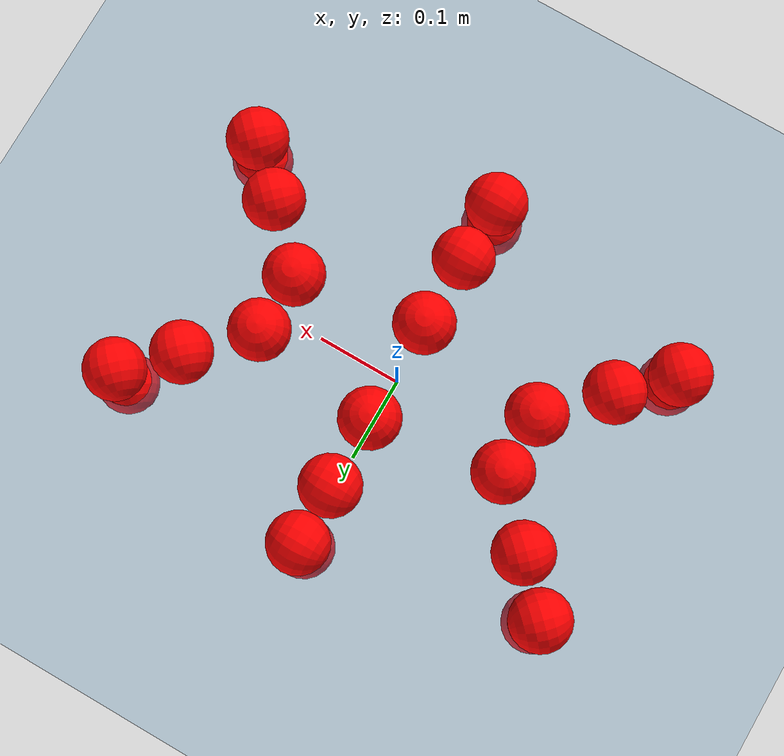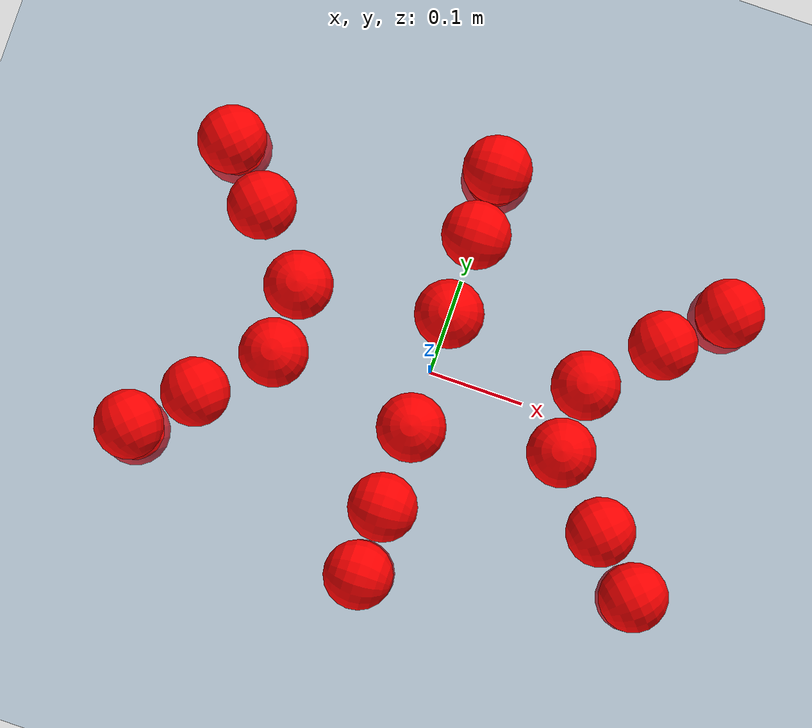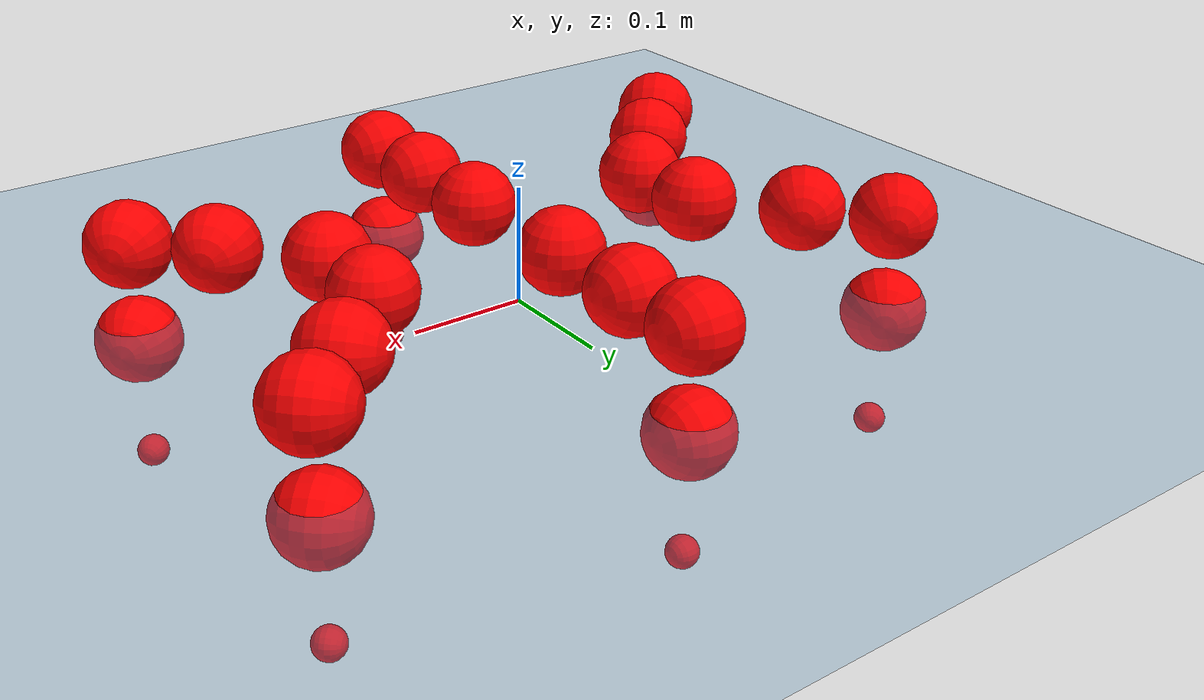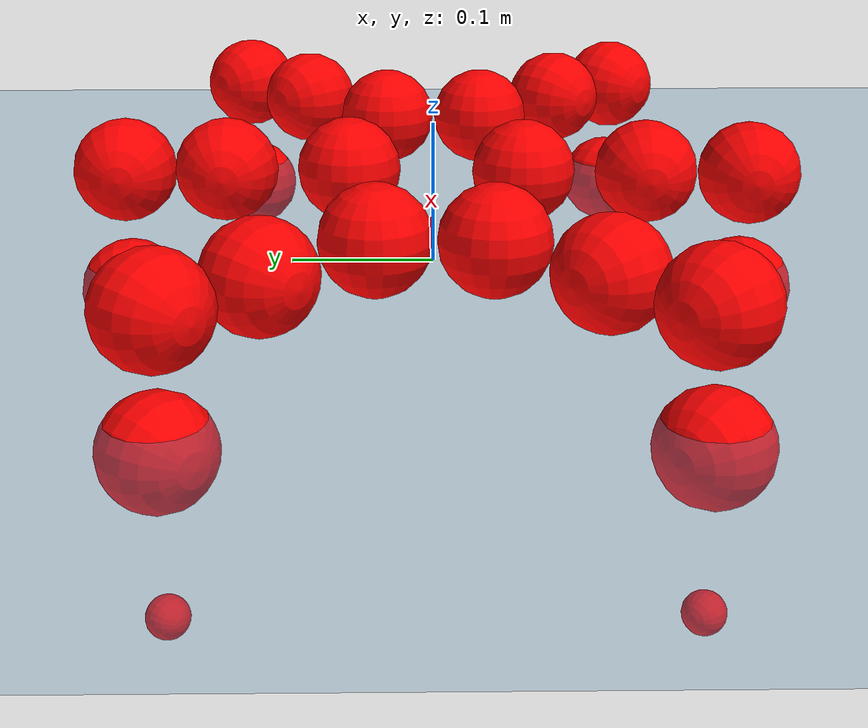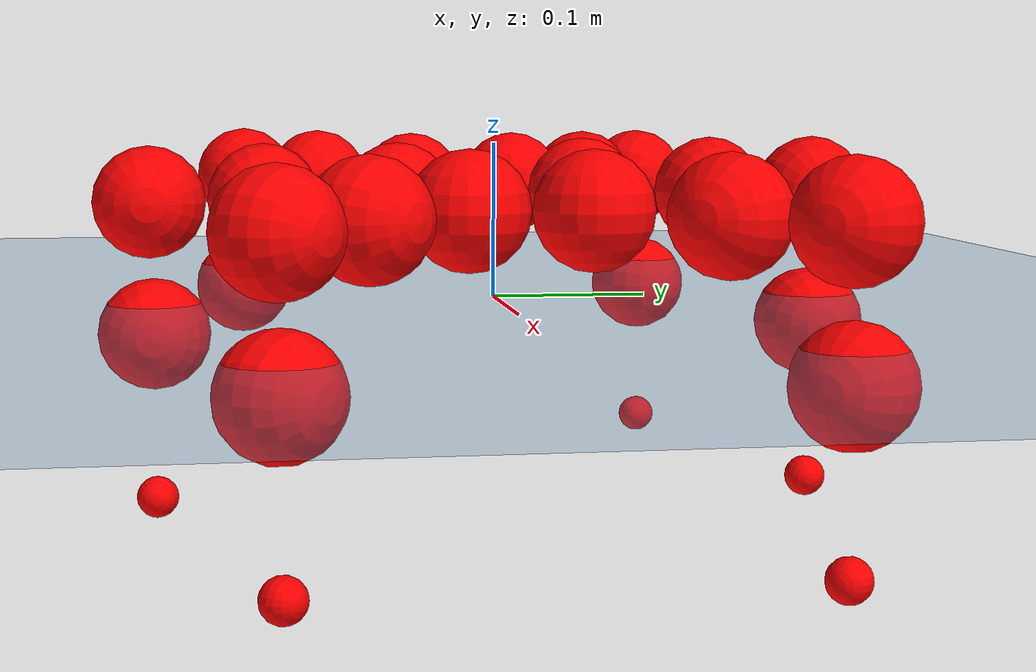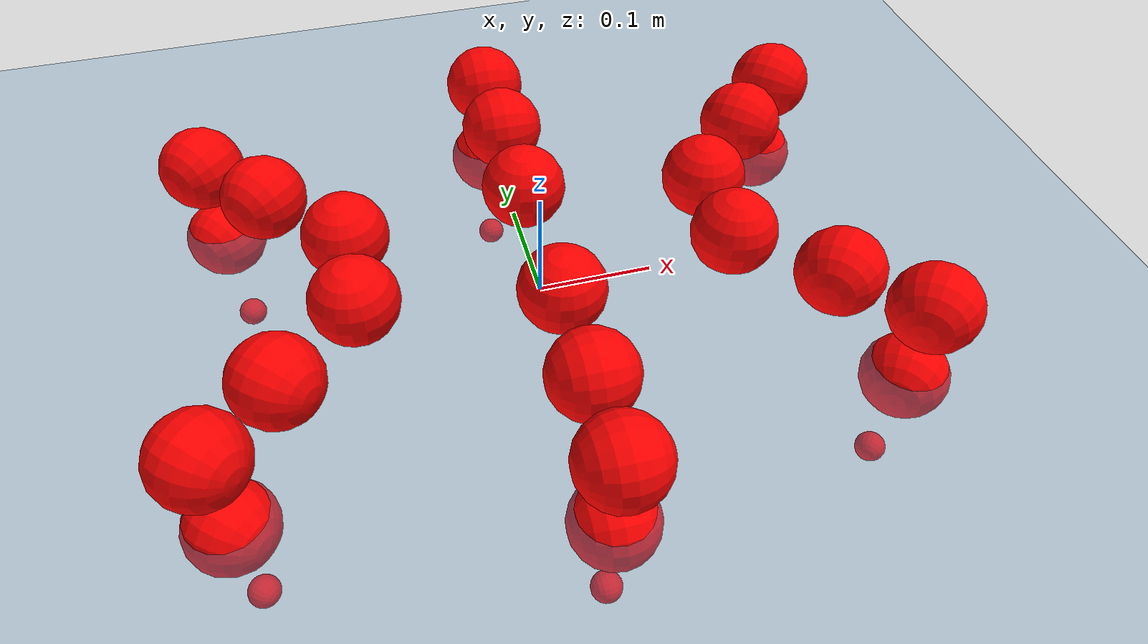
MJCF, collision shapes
<mujoco model="Golem">
  <compiler angle="radian" assetdir="assets" balanceinertia="true" inertiafromgeom="false"/>

  <option timestep="0.005" density="1.2" viscosity="2e-05"/>

  <size nkey="1"/>

  <visual>
    <quality shadowsize="8192"/>
    <map shadowclip="0.5"/>
  </visual>

  <default>
    <default class="/">
      <joint armature="0.01" damping="0.01" frictionloss="0.01"/>
      <geom contype="0" conaffinity="0" group="1" solref="-1000 -80"/>
      <site size="0.01 0.005 0.005" group="5"/>
      <general forcelimited="true" biastype="affine" gainprm="25" biasprm="0 -25 -0.5"/>
      <default class="visual">
        <geom type="mesh" group="2"/>
      </default>
      <default class="collision">
        <geom group="3"/>
      </default>
      <default class="foot">
        <geom size="0.01 0 0" condim="6" group="4" priority="1" solimp="0.015 1 0.01"/>
      </default>
      <default class="reward_collision_sphere">
        <geom group="5" rgba="1 0 0 1"/>
      </default>
    </default>
  </default>

  <asset>
    <texture type="skybox" colorspace="auto" name="//unnamed_texture_0" builtin="gradient" rgb1="0.95 0.95 0.95" rgb2="0.95 0.95 0.95" width="100" height="600"/>
    <texture type="2d" colorspace="auto" name="texplane" builtin="checker" rgb1="0.345 0.575 0.748" rgb2="0.345 0.575 0.748" markrgb="1 1 1" width="512" height="512"/>
    <material name="MatPlane" class="/" texture="texplane" texuniform="true" texrepeat="2 2" specular="0.9"/>
    <mesh name="body" class="/" file="body.stl" scale="0.001 0.001 0.001"/>
    <mesh name="coxa" class="/" file="coxa.stl" scale="0.001 0.001 0.001"/>
    <mesh name="femur" class="/" file="femur.stl" scale="0.001 0.001 0.001"/>
    <mesh name="tibia" class="/" file="tibia.stl" scale="0.001 0.001 0.001"/>
    <mesh name="tarsus" class="/" file="tarsus.stl" scale="0.001 0.001 0.001"/>
  </asset>

  <worldbody>
    <geom name="floor" class="/" size="100 100 0.125" type="plane" group="0" material="MatPlane"/>
    <light name="toplight_shadow" class="/" pos="0 0 5" dir="0.0990148 0.0990148 -0.990148" type="directional" ambient="0.04 0.04 0.04" diffuse="0.55 0.55 0.55" specular="0.12 0.12 0.12"/>
    <light name="toplight_fill" class="/" pos="0 0 5" dir="0.0990148 0.0990148 -0.990148" type="directional" castshadow="false" ambient="0.04 0.04 0.04" diffuse="0.3 0.3 0.3" specular="0.08 0.08 0.08"/>
    <body name="trunk" pos="6.38294e-05 -0.000162087 5.42078e-05" quat="1 0.000188469 -0.000406519 8.53608e-05">
      <inertial pos="-0.000597227 0.000779246 -0.00391064" quat="0.999989 0.00402313 -0.00177408 -0.00162161" mass="2.62791" diaginertia="0.00949901 0.00146959 0.0108672"/>
      <joint name="//unnamed_joint_0" type="free"/>
      <geom name="//unnamed_geom_1" class="/" pos="0 0 0.0650713" quat="1 0 0 0" type="mesh" rgba="0.9 0.9 0.9 1" mesh="body"/>
      <site name="imu" class="/" pos="0.131688 0.00543268 0.112269" size="0.00894486"/>
      <camera name="track" class="/" pos="0 -1.35748 0" quat="0.707107 0.707107 0 0" mode="trackcom"/>
      <camera name="ego_camera" class="/" pos="0.128437 0 0.101674" quat="-0.5 -0.5 0.5 0.5"/>
      <body name="coxa_RR" pos="-0.175916 -0.057026 0.0665034" quat="0.383276 -0.000894159 -0.000198635 -0.923633">
        <inertial pos="0.000623924 -0.000918973 0.000932782" quat="0.999988 -0.00039164 -0.000306067 -0.00479072" mass="0.146735" diaginertia="0.00958872 0.00148114 0.0112733"/>
        <joint name="coxa_joint_RR" class="/" pos="0 0 0" axis="-0.00594869 0.00445645 -0.999972" range="-3.15852 3.15682" armature="0.00893255" damping="0" frictionloss="0.00849301"/>
        <geom name="//unnamed_geom_2" class="/" type="mesh" rgba="0.2 0.2 0.2 1" mesh="coxa"/>
        <geom name="//unnamed_geom_3" class="reward_collision_sphere" size="0.0357794" pos="-0.0296393 0 0"/>
        <body name="femur_RR" pos="0.0590651 0.0010762 0.000571043" quat="0.499232 -0.500474 0.499905 0.500388">
          <inertial pos="-0.000124117 0.00190437 -0.000596543" quat="1 0.00019853 0.000582319 0.000435521" mass="0.141407" diaginertia="0.00920719 0.00143114 0.0106941"/>
          <joint name="femur_joint_RR" class="/" pos="0 0 0" axis="-0.00148265 -0.000146627 -0.999999" range="-3.15797 3.15777" armature="0.00944024" damping="0" frictionloss="0.0089785"/>
          <geom name="//unnamed_geom_4" class="/" type="mesh" rgba="0.9 0.9 0.9 1" mesh="femur"/>
          <geom name="//unnamed_geom_5" class="reward_collision_sphere" size="0.0357794"/>
          <body name="tibia_RR" pos="-0.000315633 -0.0747897 -0.000231926" quat="-1.19796e-06 1 6.71216e-07 9.7299e-08">
            <inertial pos="0.000267649 0.00192667 3.96612e-05" quat="1 -0.000232135 -0.000237123 3.69332e-05" mass="0.142634" diaginertia="0.0093478 0.00143938 0.010744"/>
            <joint name="tibia_joint_RR" class="/" pos="0 0 0" axis="-0.00475126 -0.00753975 0.99996" range="-3.10398 3.13625" armature="0.00919042" damping="0.000608548" frictionloss="0.00995293"/>
            <geom name="//unnamed_geom_6" class="/" type="mesh" rgba="0.2 0.2 0.2 1" mesh="tibia"/>
            <geom name="//unnamed_geom_7" class="reward_collision_sphere" size="0.0357794"/>
            <body name="tarsus_RR" pos="0.0856394 0.00110204 -0.0020461" quat="1 0.000157448 -0.00019053 8.73427e-06">
              <inertial pos="0.0582678 0.000325494 0.000278548" quat="0.49926 0.497722 0.499864 0.503138" mass="0.140392" diaginertia="0.00925706 0.00142796 0.0109686"/>
              <joint name="tarsus_joint_RR" class="/" pos="0 0 0" axis="0.000779658 -0.00178248 0.999998" range="-3.12826 3.12809" armature="0.00925884" damping="0.00356479" frictionloss="0.00914474"/>
              <geom name="//unnamed_geom_8" class="/" type="mesh" rgba="0.9 0.9 0.9 1" mesh="tarsus"/>
              <geom name="foot_1" class="foot" size="0.0085483" pos="0.110654 0 0" quat="0 -0.707107 0 0.707107"/>
              <geom name="//unnamed_geom_10" class="reward_collision_sphere" size="0.0357794"/>
              <geom name="//unnamed_geom_11" class="reward_collision_sphere" size="0.0134173" pos="0.106208 0 0"/>
              <site name="foot_1" class="foot" pos="0.110654 0 0" quat="0 -0.707107 0 0.707107" size="0.00894486"/>
            </body>
          </body>
        </body>
      </body>
      <body name="coxa_RM" pos="0.00169448 -0.0924115 0.0651903" quat="0.707093 3.05355e-05 2.12279e-05 -0.707121">
        <inertial pos="0.000680727 -0.000159732 -0.000835973" quat="0.999944 0.000866873 0.00126581 0.0104243" mass="0.14839" diaginertia="0.00970225 0.00151297 0.0112476"/>
        <joint name="coxa_joint_RM" class="/" pos="0 0 0" axis="-0.00363642 -0.00786317 -0.999962" range="-3.14081 3.15207" armature="0.00926702" damping="0.0132938" frictionloss="0.0089496"/>
        <geom name="//unnamed_geom_12" class="/" type="mesh" rgba="0.2 0.2 0.2 1" mesh="coxa"/>
        <geom name="//unnamed_geom_13" class="reward_collision_sphere" size="0.0357794" pos="-0.0296393 0 0"/>
        <body name="femur_RM" pos="0.0559594 -0.00114324 -7.34409e-05" quat="0.500095 -0.500127 0.499846 0.499931">
          <inertial pos="-0.000268898 0.000131094 -0.000345361" quat="1 -0.000882191 -0.000100265 0.000246918" mass="0.14242" diaginertia="0.00929514 0.00144774 0.0110031"/>
          <joint name="femur_joint_RM" class="/" pos="0 0 0" axis="0.000301645 0.000304572 -1" range="-3.12115 3.1231" armature="0.00904237" damping="0.00732584" frictionloss="0.00959919"/>
          <geom name="//unnamed_geom_14" class="/" type="mesh" rgba="0.9 0.9 0.9 1" mesh="femur"/>
          <geom name="//unnamed_geom_15" class="reward_collision_sphere" size="0.0357794"/>
          <body name="tibia_RM" pos="0.00125665 -0.0723874 -0.00109206" quat="-9.84638e-05 1 -0.000251916 -0.000119435">
            <inertial pos="0.000571876 0.00027405 0.000748751" quat="1 -0.000338298 -0.000545879 -9.22363e-06" mass="0.146249" diaginertia="0.0094276 0.00144046 0.0109682"/>
            <joint name="tibia_joint_RM" class="/" pos="0 0 0" axis="-0.00355617 0.00662342 0.999972" range="-3.15954 3.14274" armature="0.00812126" damping="0.00860177" frictionloss="0.00971828"/>
            <geom name="//unnamed_geom_16" class="/" type="mesh" rgba="0.2 0.2 0.2 1" mesh="tibia"/>
            <geom name="//unnamed_geom_17" class="reward_collision_sphere" size="0.0357794"/>
            <body name="tarsus_RM" pos="0.0842253 -0.00187156 0.000285082" quat="1 5.15071e-05 -0.000112792 -4.16505e-05">
              <inertial pos="0.0590413 0.000986791 8.1535e-05" quat="0.501215 0.499461 0.499141 0.500181" mass="0.147331" diaginertia="0.00957394 0.00147213 0.0110689"/>
              <joint name="tarsus_joint_RM" class="/" pos="0 0 0" axis="-0.00404719 -0.0024312 0.999989" range="-3.15973 3.14235" armature="0.00934268" damping="0.00437154" frictionloss="0.0087547"/>
              <geom name="//unnamed_geom_18" class="/" type="mesh" rgba="0.9 0.9 0.9 1" mesh="tarsus"/>
              <geom name="foot_2" class="foot" size="0.00903317" pos="0.110654 0 0" quat="0 -0.707107 0 0.707107"/>
              <geom name="//unnamed_geom_20" class="reward_collision_sphere" size="0.0357794"/>
              <geom name="//unnamed_geom_21" class="reward_collision_sphere" size="0.0134173" pos="0.106208 0 0"/>
              <site name="foot_2" class="foot" pos="0.110654 0 0" quat="0 -0.707107 0 0.707107" size="0.00894486"/>
            </body>
          </body>
        </body>
      </body>
      <body name="coxa_RF" pos="0.174655 -0.0585344 0.0664963" quat="0.923942 0.000149557 -2.81835e-05 -0.382533">
        <inertial pos="-0.0016859 0.000550616 -0.000474657" quat="1 -0.000612985 -0.000186485 -0.000699526" mass="0.143509" diaginertia="0.00967308 0.00149039 0.0111364"/>
        <joint name="coxa_joint_RF" class="/" pos="0 0 0" axis="-0.00638581 0.00374544 -0.999973" range="-3.12898 3.14078" armature="0.00889883" damping="0.0188605" frictionloss="0.00962929"/>
        <geom name="//unnamed_geom_22" class="/" type="mesh" rgba="0.2 0.2 0.2 1" mesh="coxa"/>
        <geom name="//unnamed_geom_23" class="reward_collision_sphere" size="0.0357794" pos="-0.0296393 0 0"/>
        <body name="femur_RF" pos="0.0596928 0.000159721 2.96952e-05" quat="0.50015 -0.499777 0.499663 0.50041">
          <inertial pos="0.000531939 -0.000463459 0.000688458" quat="0.999996 -0.000195714 0.0026926 -0.00121144" mass="0.144394" diaginertia="0.00939634 0.00143495 0.0108926"/>
          <joint name="femur_joint_RF" class="/" pos="0 0 0" axis="-0.00418934 0.0032748 -0.999986" range="-3.1577 3.14219" armature="0.0092862" damping="0.00926051" frictionloss="0.00916374"/>
          <geom name="//unnamed_geom_24" class="/" type="mesh" rgba="0.9 0.9 0.9 1" mesh="femur"/>
          <geom name="//unnamed_geom_25" class="reward_collision_sphere" size="0.0357794"/>
          <body name="tibia_RF" pos="0.00185626 -0.0735049 0.00038797" quat="0.000119455 1 -0.000261573 0.000517298">
            <inertial pos="-0.000238002 -0.00140181 -0.000969231" quat="0.999973 -0.00176489 -0.0031319 0.00638864" mass="0.137492" diaginertia="0.00926591 0.00140458 0.0108287"/>
            <joint name="tibia_joint_RF" class="/" pos="0 0 0" axis="0.00311209 0.00561251 0.999979" stiffness="0.000234791" range="-3.12348 3.14043" armature="0.00899479" damping="0" frictionloss="0.00909721"/>
            <geom name="//unnamed_geom_26" class="/" type="mesh" rgba="0.2 0.2 0.2 1" mesh="tibia"/>
            <geom name="//unnamed_geom_27" class="reward_collision_sphere" size="0.0357794"/>
            <body name="tarsus_RF" pos="0.0839319 0.00048459 -0.000953153" quat="1 -3.29077e-05 2.03485e-05 -2.44952e-05">
              <inertial pos="0.0577821 9.78861e-05 -0.000595494" quat="0.500839 0.501148 0.502244 0.495744" mass="0.145242" diaginertia="0.00962047 0.00143652 0.0110211"/>
              <joint name="tarsus_joint_RF" class="/" pos="0 0 0" axis="0.013316 0.00251416 0.999908" range="-3.14661 3.14492" armature="0.00918106" damping="0.00866389" frictionloss="0.0087237"/>
              <geom name="//unnamed_geom_28" class="/" type="mesh" rgba="0.9 0.9 0.9 1" mesh="tarsus"/>
              <geom name="foot_3" class="foot" size="0.00860058" pos="0.110654 0 0" quat="0 -0.707107 0 0.707107"/>
              <geom name="//unnamed_geom_30" class="reward_collision_sphere" size="0.0357794"/>
              <geom name="//unnamed_geom_31" class="reward_collision_sphere" size="0.0134173" pos="0.106208 0 0"/>
              <site name="foot_3" class="foot" pos="0.110654 0 0" quat="0 -0.707107 0 0.707107" size="0.00894486"/>
            </body>
          </body>
        </body>
      </body>
      <body name="coxa_LR" pos="-0.174787 0.0581679 0.0665948" quat="0.383162 9.961e-05 0.000487878 0.923681">
        <inertial pos="0.000957527 0.000721148 -0.000830953" quat="1 -0.00080655 0.00028365 0.000221102" mass="0.142483" diaginertia="0.00951454 0.00143802 0.0108588"/>
        <joint name="coxa_joint_LR" class="/" pos="0 0 0" axis="-0.00376135 -0.00699858 -0.999968" range="-3.12079 3.17066" armature="0.00890432" damping="0.0106164" frictionloss="0.00910924"/>
        <geom name="//unnamed_geom_32" class="/" type="mesh" rgba="0.2 0.2 0.2 1" mesh="coxa"/>
        <geom name="//unnamed_geom_33" class="reward_collision_sphere" size="0.0357794" pos="-0.0296393 0 0"/>
        <body name="femur_LR" pos="0.060084 -0.00201552 -0.000960287" quat="0.500298 -0.499872 0.5 0.499829">
          <inertial pos="0.000449679 0.000229578 -0.00110711" quat="0.999956 -0.00301409 0.00475169 -0.00745996" mass="0.145622" diaginertia="0.00954152 0.0014656 0.0109371"/>
          <joint name="femur_joint_LR" class="/" pos="0 0 0" axis="-0.00033223 -0.0125888 0.999921" stiffness="7.88257e-05" range="-3.12318 3.11928" armature="0.00991889" damping="0.00631134" frictionloss="0.00881616"/>
          <geom name="//unnamed_geom_34" class="/" type="mesh" rgba="0.9 0.9 0.9 1" mesh="femur"/>
          <geom name="//unnamed_geom_35" class="reward_collision_sphere" size="0.0357794"/>
          <body name="tibia_LR" pos="0.000822736 -0.0739643 -0.00207088" quat="-0.000354617 1 -9.32858e-05 -0.000291979">
            <inertial pos="0.000505326 -0.000787687 0.000890877" quat="0.999999 -0.000329251 0.000446079 -0.000945331" mass="0.145064" diaginertia="0.00934955 0.0014172 0.0109446"/>
            <joint name="tibia_joint_LR" class="/" pos="0 0 0" axis="-0.00121331 0.000653704 -0.999999" range="-3.10249 3.14787" armature="0.00854993" damping="0.00861223" frictionloss="0.00894501"/>
            <geom name="//unnamed_geom_36" class="/" type="mesh" rgba="0.2 0.2 0.2 1" mesh="tibia"/>
            <geom name="//unnamed_geom_37" class="reward_collision_sphere" size="0.0357794"/>
            <body name="tarsus_LR" pos="0.0852265 0.000923126 0.00164925" quat="1 1.61074e-05 2.05674e-05 6.08443e-05">
              <inertial pos="0.0600649 -0.000909055 0.000114876" quat="0.499648 0.500262 0.499897 0.500193" mass="0.1419" diaginertia="0.00951976 0.00149877 0.0109116"/>
              <joint name="tarsus_joint_LR" class="/" pos="0 0 0" axis="0.0034183 -0.00156477 -0.999993" range="-3.13208 3.13372" armature="0.00889468" damping="0.000810925" frictionloss="0.00910122"/>
              <geom name="//unnamed_geom_38" class="/" type="mesh" rgba="0.9 0.9 0.9 1" mesh="tarsus"/>
              <geom name="foot_4" class="foot" size="0.00877965" pos="0.110654 0 0" quat="0.707107 0 -0.707107 0"/>
              <geom name="//unnamed_geom_40" class="reward_collision_sphere" size="0.0357794"/>
              <geom name="//unnamed_geom_41" class="reward_collision_sphere" size="0.0134173" pos="0.106208 0 0"/>
              <site name="foot_4" class="foot" pos="0.110654 0 0" quat="0.707107 0 -0.707107 0" size="0.00894486"/>
            </body>
          </body>
        </body>
      </body>
      <body name="coxa_LM" pos="0.000650895 0.0884096 0.0675147" quat="0.707173 0.00052742 -0.000197198 0.70704">
        <inertial pos="0.000226928 -0.000122025 -0.00103675" quat="1 -1.3292e-05 2.77344e-05 -5.88374e-05" mass="0.14357" diaginertia="0.00922155 0.00143137 0.0107338"/>
        <joint name="coxa_joint_LM" class="/" pos="0 0 0" axis="0.00111227 0.00126797 -0.999999" stiffness="0.000668649" range="-3.13804 3.13816" armature="0.00851054" damping="0.00406375" frictionloss="0.00895374"/>
        <geom name="//unnamed_geom_42" class="/" type="mesh" rgba="0.2 0.2 0.2 1" mesh="coxa"/>
        <geom name="//unnamed_geom_43" class="reward_collision_sphere" size="0.0357794" pos="-0.0296393 0 0"/>
        <body name="femur_LM" pos="0.0554469 8.44729e-05 -4.41879e-05" quat="0.499988 -0.499868 0.499959 0.500185">
          <inertial pos="-0.000474427 -2.67036e-05 -0.00227124" quat="0.999996 -9.55564e-05 -0.000791329 -0.00260127" mass="0.144852" diaginertia="0.0095082 0.00146444 0.0109762"/>
          <joint name="femur_joint_LM" class="/" pos="0 0 0" axis="0.00447757 -0.00180909 0.999988" range="-3.15138 3.09754" armature="0.00906025" damping="0" frictionloss="0.00845236"/>
          <geom name="//unnamed_geom_44" class="/" type="mesh" rgba="0.9 0.9 0.9 1" mesh="femur"/>
          <geom name="//unnamed_geom_45" class="reward_collision_sphere" size="0.0357794"/>
          <body name="tibia_LM" pos="-8.21044e-05 -0.0702879 0.00117955" quat="-0.000263459 1 -6.92343e-06 0.000364688">
            <inertial pos="-0.00100145 0.000283512 -0.000172001" quat="1 0.000312215 -0.000278636 0.000403899" mass="0.13818" diaginertia="0.00915432 0.00139813 0.0105344"/>
            <joint name="tibia_joint_LM" class="/" pos="0 0 0" axis="-0.00179517 0.00619231 -0.999979" range="-3.12088 3.15349" armature="0.0100217" damping="0" frictionloss="0.00935144"/>
            <geom name="//unnamed_geom_46" class="/" type="mesh" rgba="0.2 0.2 0.2 1" mesh="tibia"/>
            <geom name="//unnamed_geom_47" class="reward_collision_sphere" size="0.0357794"/>
            <body name="tarsus_LM" pos="0.087571 -5.20343e-05 -0.000936679" quat="1 -9.10175e-05 4.66588e-06 -5.12021e-05">
              <inertial pos="0.06055 -0.00129934 -0.000439812" quat="0.500526 0.501444 0.497008 0.501009" mass="0.139628" diaginertia="0.00922634 0.0013597 0.0106925"/>
              <joint name="tarsus_joint_LM" class="/" pos="0 0 0" axis="0.000198197 -0.00103116 -0.999999" stiffness="0.00554113" range="-3.13934 3.13949" armature="0.00894137" damping="0.017293" frictionloss="0.00986633"/>
              <geom name="//unnamed_geom_48" class="/" type="mesh" rgba="0.9 0.9 0.9 1" mesh="tarsus"/>
              <geom name="foot_5" class="foot" size="0.00894594" pos="0.110654 0 0" quat="0.707107 0 -0.707107 0"/>
              <geom name="//unnamed_geom_50" class="reward_collision_sphere" size="0.0357794"/>
              <geom name="//unnamed_geom_51" class="reward_collision_sphere" size="0.0134173" pos="0.106208 0 0"/>
              <site name="foot_5" class="foot" pos="0.110654 0 0" quat="0.707107 0 -0.707107 0" size="0.00894486"/>
            </body>
          </body>
        </body>
      </body>
      <body name="coxa_LF" pos="0.176153 0.0557664 0.0661317" quat="0.923782 -4.69844e-05 -7.00978e-05 0.382919">
        <inertial pos="-0.00150866 -0.00212226 -5.39165e-05" quat="0.999991 -0.00265204 0.00235543 -0.00229015" mass="0.142219" diaginertia="0.0093089 0.00138699 0.0108439"/>
        <joint name="coxa_joint_LF" class="/" pos="0 0 0" axis="-0.00547736 -0.000541224 -0.999985" range="-3.12952 3.13713" armature="0.00838037" damping="0" frictionloss="0.00867844"/>
        <geom name="//unnamed_geom_52" class="/" type="mesh" rgba="0.2 0.2 0.2 1" mesh="coxa"/>
        <geom name="//unnamed_geom_53" class="reward_collision_sphere" size="0.0357794" pos="-0.0296393 0 0"/>
        <body name="femur_LF" pos="0.0588186 0.00215992 0.000393156" quat="0.500051 -0.499962 0.5001 0.499888">
          <inertial pos="9.96966e-05 0.000277815 -0.000835121" quat="1 -6.81283e-05 -1.73885e-05 0.000106843" mass="0.139127" diaginertia="0.00903144 0.00141652 0.010691"/>
          <joint name="femur_joint_LF" class="/" pos="0 0 0" axis="-0.00852166 -0.00327987 0.999958" range="-3.1232 3.15447" armature="0.0088652" damping="0.00391006" frictionloss="0.00907692"/>
          <geom name="//unnamed_geom_54" class="/" type="mesh" rgba="0.9 0.9 0.9 1" mesh="femur"/>
          <geom name="//unnamed_geom_55" class="reward_collision_sphere" size="0.0357794"/>
          <body name="tibia_LF" pos="-0.000303058 -0.0751278 -0.000544214" quat="-0.000156868 1 -0.000138113 -0.000184714">
            <inertial pos="-0.000280611 0.00174087 0.000666704" quat="0.999997 0.0020918 8.69834e-05 -0.000859365" mass="0.143793" diaginertia="0.00945823 0.00145114 0.0109873"/>
            <joint name="tibia_joint_LF" class="/" pos="0 0 0" axis="-8.74898e-05 0.0002109 -1" range="-3.13066 3.12344" armature="0.00945984" damping="0.000488108" frictionloss="0.00861116"/>
            <geom name="//unnamed_geom_56" class="/" type="mesh" rgba="0.2 0.2 0.2 1" mesh="tibia"/>
            <geom name="//unnamed_geom_57" class="reward_collision_sphere" size="0.0357794"/>
            <body name="tarsus_LF" pos="0.0882754 4.48859e-05 -0.00167277" quat="1 -2.16426e-05 2.1563e-05 1.5883e-05">
              <inertial pos="0.0584328 -0.000392039 0.000726765" quat="0.493494 0.504456 0.495196 0.506723" mass="0.144642" diaginertia="0.00944859 0.0014357 0.0107731"/>
              <joint name="tarsus_joint_LF" class="/" pos="0 0 0" axis="-0.00342783 -0.00999228 -0.999944" stiffness="0.029715" range="-3.15574 3.13132" armature="0.0088483" damping="0.0266835" frictionloss="0.00933755"/>
              <geom name="//unnamed_geom_58" class="/" type="mesh" rgba="0.9 0.9 0.9 1" mesh="tarsus"/>
              <geom name="foot_6" class="foot" size="0.00883086" pos="0.110654 0 0" quat="0.707107 0 -0.707107 0"/>
              <geom name="//unnamed_geom_60" class="reward_collision_sphere" size="0.0357794"/>
              <geom name="//unnamed_geom_61" class="reward_collision_sphere" size="0.0134173" pos="0.106208 0 0"/>
              <site name="foot_6" class="foot" pos="0.110654 0 0" quat="0.707107 0 -0.707107 0" size="0.00894486"/>
            </body>
          </body>
        </body>
      </body>
    </body>
  </worldbody>

  <contact>
    <pair class="/" geom1="floor" geom2="foot_1" name="//unnamed_contact_0"/>
    <pair class="/" geom1="floor" geom2="foot_2" name="//unnamed_contact_1"/>
    <pair class="/" geom1="floor" geom2="foot_3" name="//unnamed_contact_2"/>
    <pair class="/" geom1="floor" geom2="foot_4" name="//unnamed_contact_3"/>
    <pair class="/" geom1="floor" geom2="foot_5" name="//unnamed_contact_4"/>
    <pair class="/" geom1="floor" geom2="foot_6" name="//unnamed_contact_5"/>
  </contact>

  <actuator>
    <general name="coxa_joint_RR" class="/" joint="coxa_joint_RR" forcerange="-6.57061 6.57061" gainprm="21.5166" biasprm="0 -21.5166 -0.453474"/>
    <general name="femur_joint_RR" class="/" joint="femur_joint_RR" forcerange="-6.35408 6.35408" gainprm="21.5166" biasprm="0 -21.5166 -0.453474"/>
    <general name="tibia_joint_RR" class="/" joint="tibia_joint_RR" forcerange="-6.49703 6.49703" gainprm="21.5166" biasprm="0 -21.5166 -0.453474"/>
    <general name="tarsus_joint_RR" class="/" joint="tarsus_joint_RR" forcerange="-6.75418 6.75418" gainprm="21.5166" biasprm="0 -21.5166 -0.453474"/>
    <general name="coxa_joint_RM" class="/" joint="coxa_joint_RM" forcerange="-6.77727 6.77727" gainprm="21.5166" biasprm="0 -21.5166 -0.453474"/>
    <general name="femur_joint_RM" class="/" joint="femur_joint_RM" forcerange="-6.76618 6.76618" gainprm="21.5166" biasprm="0 -21.5166 -0.453474"/>
    <general name="tibia_joint_RM" class="/" joint="tibia_joint_RM" forcerange="-6.32494 6.32494" gainprm="21.5166" biasprm="0 -21.5166 -0.453474"/>
    <general name="tarsus_joint_RM" class="/" joint="tarsus_joint_RM" forcerange="-6.29164 6.29164" gainprm="21.5166" biasprm="0 -21.5166 -0.453474"/>
    <general name="coxa_joint_RF" class="/" joint="coxa_joint_RF" forcerange="-6.31131 6.31131" gainprm="21.5166" biasprm="0 -21.5166 -0.453474"/>
    <general name="femur_joint_RF" class="/" joint="femur_joint_RF" forcerange="-6.62226 6.62226" gainprm="21.5166" biasprm="0 -21.5166 -0.453474"/>
    <general name="tibia_joint_RF" class="/" joint="tibia_joint_RF" forcerange="-6.28607 6.28607" gainprm="21.5166" biasprm="0 -21.5166 -0.453474"/>
    <general name="tarsus_joint_RF" class="/" joint="tarsus_joint_RF" forcerange="-6.5744 6.5744" gainprm="21.5166" biasprm="0 -21.5166 -0.453474"/>
    <general name="coxa_joint_LR" class="/" joint="coxa_joint_LR" forcerange="-6.50447 6.50447" gainprm="21.5166" biasprm="0 -21.5166 -0.453474"/>
    <general name="femur_joint_LR" class="/" joint="femur_joint_LR" forcerange="-6.52602 6.52602" gainprm="21.5166" biasprm="0 -21.5166 -0.453474"/>
    <general name="tibia_joint_LR" class="/" joint="tibia_joint_LR" forcerange="-6.39829 6.39829" gainprm="21.5166" biasprm="0 -21.5166 -0.453474"/>
    <general name="tarsus_joint_LR" class="/" joint="tarsus_joint_LR" forcerange="-6.5677 6.5677" gainprm="21.5166" biasprm="0 -21.5166 -0.453474"/>
    <general name="coxa_joint_LM" class="/" joint="coxa_joint_LM" forcerange="-6.59905 6.59905" gainprm="21.5166" biasprm="0 -21.5166 -0.453474"/>
    <general name="femur_joint_LM" class="/" joint="femur_joint_LM" forcerange="-6.54447 6.54447" gainprm="21.5166" biasprm="0 -21.5166 -0.453474"/>
    <general name="tibia_joint_LM" class="/" joint="tibia_joint_LM" forcerange="-6.52761 6.52761" gainprm="21.5166" biasprm="0 -21.5166 -0.453474"/>
    <general name="tarsus_joint_LM" class="/" joint="tarsus_joint_LM" forcerange="-6.28553 6.28553" gainprm="21.5166" biasprm="0 -21.5166 -0.453474"/>
    <general name="coxa_joint_LF" class="/" joint="coxa_joint_LF" forcerange="-6.69267 6.69267" gainprm="21.5166" biasprm="0 -21.5166 -0.453474"/>
    <general name="femur_joint_LF" class="/" joint="femur_joint_LF" forcerange="-6.49789 6.49789" gainprm="21.5166" biasprm="0 -21.5166 -0.453474"/>
    <general name="tibia_joint_LF" class="/" joint="tibia_joint_LF" forcerange="-6.54372 6.54372" gainprm="21.5166" biasprm="0 -21.5166 -0.453474"/>
    <general name="tarsus_joint_LF" class="/" joint="tarsus_joint_LF" forcerange="-6.57788 6.57788" gainprm="21.5166" biasprm="0 -21.5166 -0.453474"/>
  </actuator>

  <sensor>
    <gyro site="imu" name="imu_angular_velocity"/>
    <velocimeter site="imu" name="imu_linear_velocity"/>
    <framelinvel objtype="site" objname="foot_1" name="foot_1_global_linear_velocity"/>
    <framelinvel objtype="site" objname="foot_2" name="foot_2_global_linear_velocity"/>
    <framelinvel objtype="site" objname="foot_3" name="foot_3_global_linear_velocity"/>
    <framelinvel objtype="site" objname="foot_4" name="foot_4_global_linear_velocity"/>
    <framelinvel objtype="site" objname="foot_5" name="foot_5_global_linear_velocity"/>
    <framelinvel objtype="site" objname="foot_6" name="foot_6_global_linear_velocity"/>
  </sensor>

  <keyframe>
    <key name="home" qpos="0 0 0.1457 1 0 0 0 0 0 0 0 0 0 0 0 0 0 0 0 0 0 0 0 0 0 0 0 0 0 0 0"/>
  </keyframe>
</mujoco>
